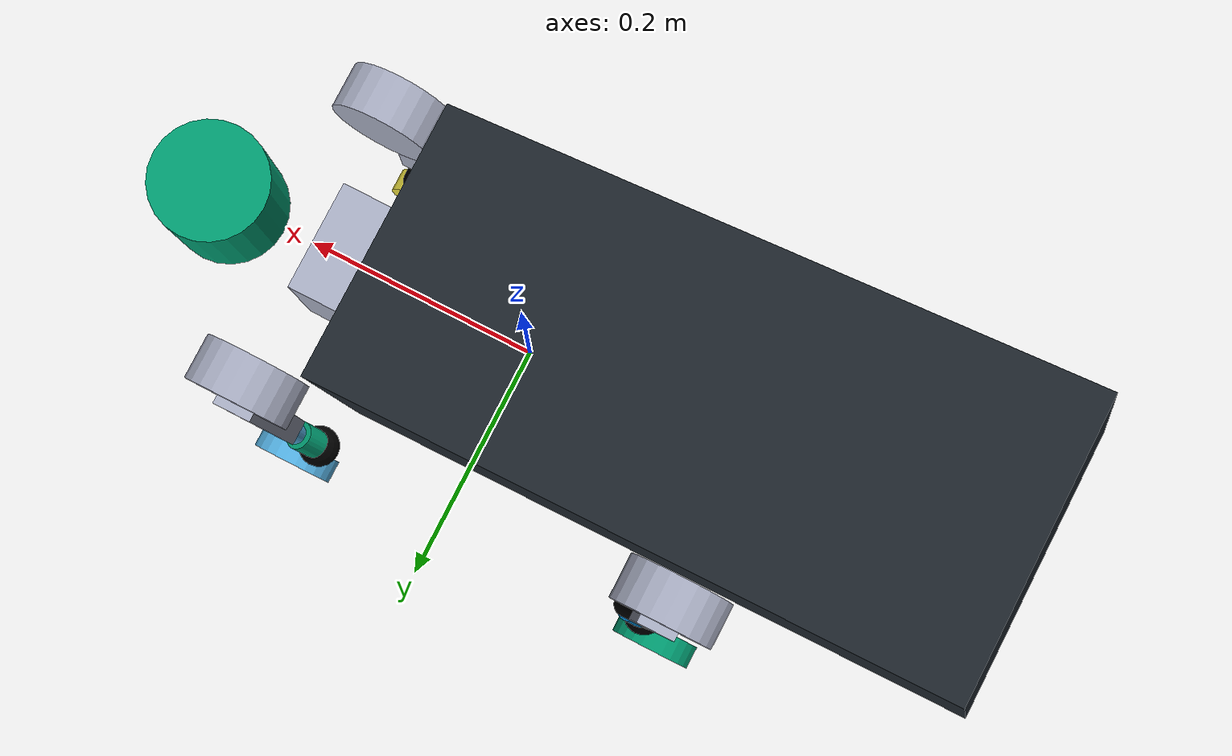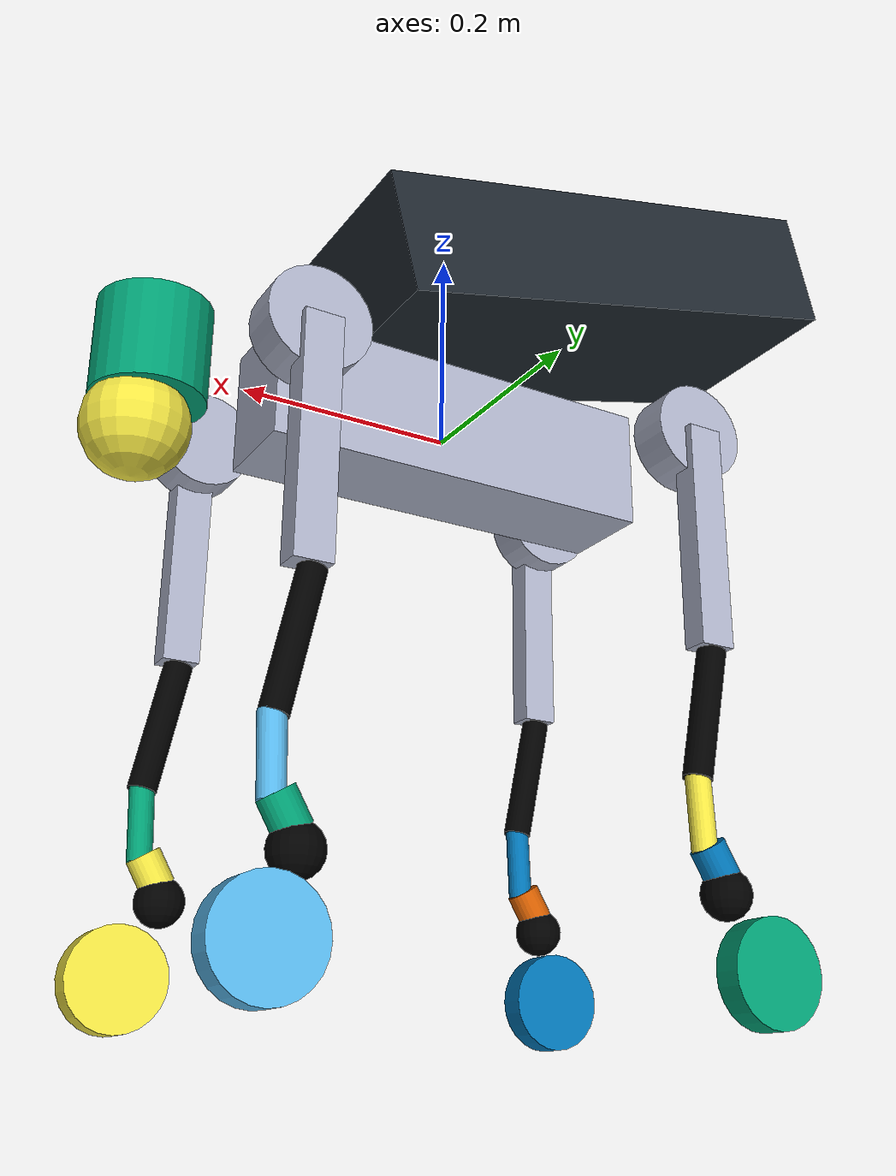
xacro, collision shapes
<?xml version='1.0' encoding='utf-8'?>
<robot name="go2_caddie" xmlns:xacro="http://www.ros.org/wiki/xacro">
  <xacro:arg name="use_gazebo" default="true"/>
  <xacro:arg name="leg_joint_type" default="fixed"/>
  <xacro:arg name="use_leg_control" default="false"/>
  <xacro:arg name="use_leg_collision" default="true"/>
  <xacro:arg name="leg_mass_scale" default="1.0"/>
  <xacro:property name="leg_mass_scale_value" value="$(arg leg_mass_scale)"/>

  <xacro:macro name="leg_position_joint" params="joint_name lower upper initial">
    <joint name="${joint_name}">
      <command_interface name="position">
        <param name="min">${lower}</param>
        <param name="max">${upper}</param>
      </command_interface>
      <state_interface name="position">
        <param name="initial_value">${initial}</param>
      </state_interface>
      <state_interface name="velocity"/>
      <state_interface name="effort"/>
    </joint>
  </xacro:macro>

  <xacro:macro name="visual_only_leg_link" params="link_name">
    <gazebo reference="${link_name}">
      <gravity>false</gravity>
      <self_collide>false</self_collide>
    </gazebo>
  </xacro:macro>

  <link name="base_footprint"/>
  <joint name="base_footprint_to_base" type="fixed">
    <origin xyz="0 0 0" rpy="0 0 0"/>
    <parent link="base_footprint"/>
    <child link="base"/>
  </joint>

  <link name="base">
    <inertial>
      <origin xyz="0.021112 0 -0.005366" rpy="0 0 0" />
      <mass value="6.921" />
      <inertia ixx="0.02448" ixy="0.00012166" ixz="0.0014849" iyy="0.098077" iyz="-3.12E-05" izz="0.107" />
    </inertial>
    <visual>
      <origin xyz="0 0 0" rpy="0 0 0" />
      <geometry>
        <mesh filename="package://go2_description/dae/base.dae" />
      </geometry>
      <material name="深色橡胶_001-effect"><color rgba="0.6717055 0.6924257 0.7742702 1" /></material><material name="白色logo_001-effect"><color rgba="1 1 1 1" /></material><material name="黑色贴纸_007-effect"><color rgba="0.009018 0.009018 0.009018 1" /></material><material name="黑色金属_007-effect"><color rgba="0.01341 0.01341 0.01341 1" /></material><material name="黑色塑料_003-effect"><color rgba="0.023455 0.023455 0.023455 1" /></material></visual>
    <collision>
      <origin rpy="0 0 0" xyz="0 0 0" />
      <geometry>
        <box size="0.3762 0.0935 0.114" />
      </geometry>
    </collision>
  </link>
  <link name="Head_upper">
    <inertial>
      <origin xyz="0 0 0" rpy="0 0 0" />
      <mass value="0.001" />
      <inertia ixx="9.6e-06" ixy="0" ixz="0" iyy="9.6e-06" iyz="0" izz="9.6e-06" />
    </inertial>
    <collision>
      <origin xyz="0 0 0" rpy="0 0 0" />
      <geometry>
        <cylinder radius="0.05" length="0.09" />
      </geometry>
    </collision>
  </link>
  <joint name="Head_upper_joint" type="fixed" dont_collapse="true">
    <origin xyz="0.285 0 0.01" rpy="0 0 0" />
    <parent link="base" />
    <child link="Head_upper" />
    <axis xyz="0 0 0" />
  </joint>
  <link name="Head_lower">
    <inertial>
      <origin xyz="0 0 0" rpy="0 0 0" />
      <mass value="0.001" />
      <inertia ixx="9.6e-06" ixy="0" ixz="0" iyy="9.6e-06" iyz="0" izz="9.6e-06" />
    </inertial>
    <collision>
      <origin xyz="0 0 0" rpy="0 0 0" />
      <geometry>
        <sphere radius="0.047" />
      </geometry>
    </collision>
  </link>
  <joint name="Head_lower_joint" type="fixed" dont_collapse="true">
    <origin xyz="0.008 0 -0.07" rpy="0 0 0" />
    <parent link="Head_upper" />
    <child link="Head_lower" />
    <axis xyz="0 0 0" />
  </joint>
  <link name="FL_hip">
    <inertial>
      <origin xyz="-0.0054 0.00194 -0.000105" rpy="0 0 0" />
      <mass value="${0.678 * float(leg_mass_scale_value)}" />
      <inertia ixx="${0.00048 * float(leg_mass_scale_value)}" ixy="${-3.01E-06 * float(leg_mass_scale_value)}" ixz="${1.11E-06 * float(leg_mass_scale_value)}" iyy="${0.000884 * float(leg_mass_scale_value)}" iyz="${-1.42E-06 * float(leg_mass_scale_value)}" izz="${0.000596 * float(leg_mass_scale_value)}" />
    </inertial>
    <visual>
      <origin xyz="0 0 0" rpy="0 0 0" />
      <geometry>
        <mesh filename="package://go2_description/dae/hip.dae" />
      </geometry>
      <material name="深色橡胶_001-effect"><color rgba="0.6717055 0.6924257 0.7742702 1" /></material><material name="Material-effect"><color rgba="0.9 0.95 0.95 1" /></material></visual>
    <xacro:if value="$(arg use_leg_collision)">
    <collision>
      <origin rpy="1.5707963267948966 0 0" xyz="0 0.08 0" />
      <geometry>
        <cylinder length="0.04" radius="0.046" />
      </geometry>
    </collision>
    </xacro:if>
  </link>
  <joint name="FL_hip_joint" type="$(arg leg_joint_type)">
    <origin xyz="0.1934 0.0465 0" rpy="0 0 0" />
    <parent link="base" />
    <child link="FL_hip" />
    <axis xyz="1 0 0" />
    <limit lower="-1.0472" upper="1.0472" effort="70.0" velocity="30.1" />
  </joint>
  <link name="FL_hip_rotor">
    <inertial>
      <origin rpy="0 0 0" xyz="0.0 0.0 0.0" />
      <mass value="0.089" />
      <inertia ixx="0.000111842" ixy="0.0" ixz="0.0" iyy="0.000059647" iyz="0.0" izz="0.000059647" />
    </inertial>
  </link>
  <joint name="FL_hip_rotor_joint" type="fixed">
    <origin rpy="0 0 0" xyz="0.11215 0.04675 0" />
    <parent link="base" />
    <child link="FL_hip_rotor" />
  </joint>
  <link name="FL_thigh">
    <inertial>
      <origin xyz="-0.00374 -0.0223 -0.0327" rpy="0 0 0" />
      <mass value="${1.152 * float(leg_mass_scale_value)}" />
      <inertia ixx="${0.00584 * float(leg_mass_scale_value)}" ixy="${8.72E-05 * float(leg_mass_scale_value)}" ixz="${-0.000289 * float(leg_mass_scale_value)}" iyy="${0.0058 * float(leg_mass_scale_value)}" iyz="${0.000808 * float(leg_mass_scale_value)}" izz="${0.00103 * float(leg_mass_scale_value)}" />
    </inertial>
    <visual>
      <origin xyz="0 0 0" rpy="0 0 0" />
      <geometry>
        <mesh filename="package://go2_description/dae/thigh.dae" />
      </geometry>
      <material name="深色橡胶_003-effect"><color rgba="0.6717055 0.6924257 0.7742702 1" /></material><material name="Material_009-effect"><color rgba="0.9 0.95 0.95 1" /></material></visual>
    <xacro:if value="$(arg use_leg_collision)">
    <collision>
      <origin rpy="0 1.5707963267948966 0" xyz="0 0 -0.1065" />
      <geometry>
        <box size="0.213 0.0245 0.034" />
      </geometry>
    </collision>
    </xacro:if>
  </link>
  <joint name="FL_thigh_joint" type="$(arg leg_joint_type)">
    <origin xyz="0 0.0955 0" rpy="0 0 0" />
    <parent link="FL_hip" />
    <child link="FL_thigh" />
    <axis xyz="0 1 0" />
    <limit lower="-1.5708" upper="3.4907" effort="70.0" velocity="30.1" />
  </joint>
  <link name="FL_thigh_rotor">
    <inertial>
      <origin rpy="0 0 0" xyz="0.0 0.0 0.0" />
      <mass value="0.089" />
      <inertia ixx="0.000059647" ixy="0.0" ixz="0.0" iyy="0.000111842" iyz="0.0" izz="0.000059647" />
    </inertial>
  </link>
  <joint name="FL_thigh_rotor_joint" type="fixed">
    <origin rpy="0 0 0" xyz="0 -0.00015 0" />
    <parent link="FL_hip" />
    <child link="FL_thigh_rotor" />
  </joint>
  <link name="FL_calf">
    <inertial>
      <origin xyz="0.00548 -0.000975 -0.115" rpy="0 0 0" />
      <mass value="${0.154 * float(leg_mass_scale_value)}" />
      <inertia ixx="${0.00108 * float(leg_mass_scale_value)}" ixy="${3.4E-07 * float(leg_mass_scale_value)}" ixz="${1.72E-05 * float(leg_mass_scale_value)}" iyy="${0.0011 * float(leg_mass_scale_value)}" iyz="${8.28E-06 * float(leg_mass_scale_value)}" izz="${3.29E-05 * float(leg_mass_scale_value)}" />
    </inertial>
    <visual>
      <origin xyz="0 0 0" rpy="0 0 0" />
      <geometry>
        <mesh filename="package://go2_description/dae/calf.dae" />
      </geometry>
      <material name="黑色足端_005-effect"><color rgba="0 0 0 1" /></material><material name="深色橡胶_005-effect"><color rgba="0.6717055 0.6924257 0.7742702 1" /></material></visual>
    <xacro:if value="$(arg use_leg_collision)">
    <collision>
      <origin rpy="0 -0.21 0" xyz="0.008 0 -0.06" />
      <geometry>
        <cylinder length="0.12" radius="0.012" />
      </geometry>
    </collision>
    </xacro:if>
  </link>
  <joint name="FL_calf_joint" type="$(arg leg_joint_type)">
    <origin xyz="0 0 -0.213" rpy="0 0 0" />
    <parent link="FL_thigh" />
    <child link="FL_calf" />
    <axis xyz="0 1 0" />
    <limit lower="-2.7227" upper="-0.83776" effort="90.0" velocity="15.70" />
  </joint>
  <link name="FL_calflower">
    <xacro:if value="$(arg use_leg_collision)">
    <collision>
      <origin rpy="0 0 0" xyz="0 0 0" />
      <geometry>
        <cylinder length="0.065" radius="0.011" />
      </geometry>
    </collision>
    </xacro:if>
  </link>
  <joint name="FL_calflower_joint" type="fixed">
    <origin xyz="0.020 0 -0.148" rpy="0 0.05 0" />
    <parent link="FL_calf" />
    <child link="FL_calflower" />
    <axis xyz="0 0 0" />
  </joint>
  <link name="FL_calflower1">
    <xacro:if value="$(arg use_leg_collision)">
    <collision>
      <origin rpy="0 0 0" xyz="0 0 0" />
      <geometry>
        <cylinder length="0.03" radius="0.0155" />
      </geometry>
    </collision>
    </xacro:if>
  </link>
  <joint name="FL_calflower1_joint" type="fixed">
    <origin xyz="-0.01 0 -0.04" rpy="0 0.48 0" />
    <parent link="FL_calflower" />
    <child link="FL_calflower1" />
    <axis xyz="0 0 0" />
  </joint>
  <link name="FL_calf_rotor">
    <inertial>
      <origin rpy="0 0 0" xyz="0.0 0.0 0.0" />
      <mass value="0.089" />
      <inertia ixx="0.000059647" ixy="0.0" ixz="0.0" iyy="0.000111842" iyz="0.0" izz="0.000059647" />
    </inertial>
  </link>
  <joint name="FL_calf_rotor_joint" type="fixed">
    <origin rpy="0 0 0" xyz="0 -0.03235 0" />
    <parent link="FL_thigh" />
    <child link="FL_calf_rotor" />
  </joint>
  <link name="FL_foot">
    <inertial>
      <origin xyz="0 0 0" rpy="0 0 0" />
      <mass value="${0.04 * float(leg_mass_scale_value)}" />
      <inertia ixx="${9.6e-06 * float(leg_mass_scale_value)}" ixy="${0 * float(leg_mass_scale_value)}" ixz="${0 * float(leg_mass_scale_value)}" iyy="${9.6e-06 * float(leg_mass_scale_value)}" iyz="${0 * float(leg_mass_scale_value)}" izz="${9.6e-06 * float(leg_mass_scale_value)}" />
    </inertial>
    <visual>
      <origin xyz="0 0 0" rpy="0 0 0" />
      <geometry>
        <mesh filename="package://go2_description/dae/foot.dae" />
      </geometry>
      <material name="黑色足端_007-effect"><color rgba="0 0 0 1" /></material></visual>
    <xacro:if value="$(arg use_leg_collision)">
    <collision>
      <origin rpy="0 0 0" xyz="-0.002 0 0" />
      <geometry>
        <sphere radius="0.022" />
      </geometry>
    </collision>
    </xacro:if>
  </link>
  <joint name="FL_foot_joint" type="fixed" dont_collapse="true">
    <origin xyz="0 0 -0.213" rpy="0 0 0" />
    <parent link="FL_calf" />
    <child link="FL_foot" />
    <axis xyz="0 0 0" />
  </joint>
  <link name="FR_hip">
    <inertial>
      <origin xyz="-0.0054 -0.00194 -0.000105" rpy="0 0 0" />
      <mass value="${0.678 * float(leg_mass_scale_value)}" />
      <inertia ixx="${0.00048 * float(leg_mass_scale_value)}" ixy="${3.01E-06 * float(leg_mass_scale_value)}" ixz="${1.11E-06 * float(leg_mass_scale_value)}" iyy="${0.000884 * float(leg_mass_scale_value)}" iyz="${1.42E-06 * float(leg_mass_scale_value)}" izz="${0.000596 * float(leg_mass_scale_value)}" />
    </inertial>
    <visual>
      <origin xyz="0 0 0" rpy="3.1415 0 0" />
      <geometry>
        <mesh filename="package://go2_description/dae/hip.dae" />
      </geometry>
      <material name="深色橡胶_001-effect"><color rgba="0.6717055 0.6924257 0.7742702 1" /></material><material name="Material-effect"><color rgba="0.9 0.95 0.95 1" /></material></visual>
    <xacro:if value="$(arg use_leg_collision)">
    <collision>
      <origin rpy="1.5707963267948966 0 0" xyz="0 -0.08 0" />
      <geometry>
        <cylinder length="0.04" radius="0.046" />
      </geometry>
    </collision>
    </xacro:if>
  </link>
  <joint name="FR_hip_joint" type="$(arg leg_joint_type)">
    <origin xyz="0.1934 -0.0465 0" rpy="0 0 0" />
    <parent link="base" />
    <child link="FR_hip" />
    <axis xyz="1 0 0" />
    <limit lower="-1.0472" upper="1.0472" effort="70.0" velocity="30.1" />
  </joint>
  <link name="FR_hip_rotor">
    <inertial>
      <origin rpy="0 0 0" xyz="0.0 0.0 0.0" />
      <mass value="0.089" />
      <inertia ixx="0.000111842" ixy="0.0" ixz="0.0" iyy="0.000059647" iyz="0.0" izz="0.000059647" />
    </inertial>
  </link>
  <joint name="FR_hip_rotor_joint" type="fixed">
    <origin rpy="0 0 0" xyz="0.11215 -0.04675 0" />
    <parent link="base" />
    <child link="FR_hip_rotor" />
  </joint>
  <link name="FR_thigh">
    <inertial>
      <origin xyz="-0.00374 0.0223 -0.0327" rpy="0 0 0" />
      <mass value="${1.152 * float(leg_mass_scale_value)}" />
      <inertia ixx="${0.00584 * float(leg_mass_scale_value)}" ixy="${-8.72E-05 * float(leg_mass_scale_value)}" ixz="${-0.000289 * float(leg_mass_scale_value)}" iyy="${0.0058 * float(leg_mass_scale_value)}" iyz="${-0.000808 * float(leg_mass_scale_value)}" izz="${0.00103 * float(leg_mass_scale_value)}" />
    </inertial>
    <visual>
      <origin xyz="0 0 0" rpy="0 0 0" />
      <geometry>
        <mesh filename="package://go2_description/dae/thigh_mirror.dae" />
      </geometry>
      <material name="深色橡胶_012-effect"><color rgba="0.6717055 0.6924257 0.7742702 1" /></material><material name="Material_011-effect"><color rgba="0.9 0.95 0.95 1" /></material></visual>
    <xacro:if value="$(arg use_leg_collision)">
    <collision>
      <origin rpy="0 1.5707963267948966 0" xyz="0 0 -0.1065" />
      <geometry>
        <box size="0.213 0.0245 0.034" />
      </geometry>
    </collision>
    </xacro:if>
  </link>
  <joint name="FR_thigh_joint" type="$(arg leg_joint_type)">
    <origin xyz="0 -0.0955 0" rpy="0 0 0" />
    <parent link="FR_hip" />
    <child link="FR_thigh" />
    <axis xyz="0 1 0" />
    <limit lower="-1.5708" upper="3.4907" effort="70.0" velocity="30.1" />
  </joint>
  <link name="FR_thigh_rotor">
    <inertial>
      <origin rpy="0 0 0" xyz="0.0 0.0 0.0" />
      <mass value="0.089" />
      <inertia ixx="0.000059647" ixy="0.0" ixz="0.0" iyy="0.000111842" iyz="0.0" izz="0.000059647" />
    </inertial>
  </link>
  <joint name="FR_thigh_rotor_joint" type="fixed">
    <origin rpy="0 0 0" xyz="0 0.00015 0" />
    <parent link="FR_hip" />
    <child link="FR_thigh_rotor" />
  </joint>
  <link name="FR_calf">
    <inertial>
      <origin xyz="0.00548 0.000975 -0.115" rpy="0 0 0" />
      <mass value="${0.154 * float(leg_mass_scale_value)}" />
      <inertia ixx="${0.00108 * float(leg_mass_scale_value)}" ixy="${-3.4E-07 * float(leg_mass_scale_value)}" ixz="${1.72E-05 * float(leg_mass_scale_value)}" iyy="${0.0011 * float(leg_mass_scale_value)}" iyz="${-8.28E-06 * float(leg_mass_scale_value)}" izz="${3.29E-05 * float(leg_mass_scale_value)}" />
    </inertial>
    <visual>
      <origin xyz="0 0 0" rpy="0 0 0" />
      <geometry>
        <mesh filename="package://go2_description/dae/calf_mirror.dae" />
      </geometry>
      <material name="黑色足端_006-effect"><color rgba="0 0 0 1" /></material><material name="深色橡胶_007-effect"><color rgba="0.6717055 0.6924257 0.7742702 1" /></material></visual>
    <xacro:if value="$(arg use_leg_collision)">
    <collision>
      <origin rpy="0 -0.2 0" xyz="0.01 0 -0.06" />
      <geometry>
        <cylinder length="0.12" radius="0.013" />
      </geometry>
    </collision>
    </xacro:if>
  </link>
  <joint name="FR_calf_joint" type="$(arg leg_joint_type)">
    <origin xyz="0 0 -0.213" rpy="0 0 0" />
    <parent link="FR_thigh" />
    <child link="FR_calf" />
    <axis xyz="0 1 0" />
    <limit lower="-2.7227" upper="-0.83776" effort="90.0" velocity="15.70" />
  </joint>
  <link name="FR_calflower">
    <xacro:if value="$(arg use_leg_collision)">
    <collision>
      <origin rpy="0 0 0" xyz="0 0 0" />
      <geometry>
        <cylinder length="0.065" radius="0.011" />
      </geometry>
    </collision>
    </xacro:if>
  </link>
  <joint name="FR_calflower_joint" type="fixed">
    <origin xyz="0.020 0 -0.148" rpy="0 0.05 0" />
    <parent link="FR_calf" />
    <child link="FR_calflower" />
    <axis xyz="0 0 0" />
  </joint>
  <link name="FR_calflower1">
    <xacro:if value="$(arg use_leg_collision)">
    <collision>
      <origin rpy="0 0 0" xyz="0 0 0" />
      <geometry>
        <cylinder length="0.03" radius="0.0155" />
      </geometry>
    </collision>
    </xacro:if>
  </link>
  <joint name="FR_calflower1_joint" type="fixed">
    <origin xyz="-0.01 0 -0.04" rpy="0 0.48 0" />
    <parent link="FR_calflower" />
    <child link="FR_calflower1" />
    <axis xyz="0 0 0" />
  </joint>
  <link name="FR_calf_rotor">
    <inertial>
      <origin rpy="0 0 0" xyz="0.0 0.0 0.0" />
      <mass value="0.089" />
      <inertia ixx="0.000059647" ixy="0.0" ixz="0.0" iyy="0.000111842" iyz="0.0" izz="0.000059647" />
    </inertial>
  </link>
  <joint name="FR_calf_rotor_joint" type="fixed">
    <origin rpy="0 0 0" xyz="0 0.03235 0" />
    <parent link="FR_thigh" />
    <child link="FR_calf_rotor" />
  </joint>
  <link name="FR_foot">
    <inertial>
      <origin xyz="0 0 0" rpy="0 0 0" />
      <mass value="${0.04 * float(leg_mass_scale_value)}" />
      <inertia ixx="${9.6e-06 * float(leg_mass_scale_value)}" ixy="${0 * float(leg_mass_scale_value)}" ixz="${0 * float(leg_mass_scale_value)}" iyy="${9.6e-06 * float(leg_mass_scale_value)}" iyz="${0 * float(leg_mass_scale_value)}" izz="${9.6e-06 * float(leg_mass_scale_value)}" />
    </inertial>
    <visual>
      <origin xyz="0 0 0" rpy="0 0 0" />
      <geometry>
        <mesh filename="package://go2_description/dae/foot.dae" />
      </geometry>
      <material name="黑色足端_007-effect"><color rgba="0 0 0 1" /></material></visual>
    <xacro:if value="$(arg use_leg_collision)">
    <collision>
      <origin rpy="0 0 0" xyz="-0.002 0 0" />
      <geometry>
        <sphere radius="0.022" />
      </geometry>
    </collision>
    </xacro:if>
  </link>
  <joint name="FR_foot_joint" type="fixed" dont_collapse="true">
    <origin xyz="0 0 -0.213" rpy="0 0 0" />
    <parent link="FR_calf" />
    <child link="FR_foot" />
    <axis xyz="0 0 0" />
  </joint>
  <link name="RL_hip">
    <inertial>
      <origin xyz="0.0054 0.00194 -0.000105" rpy="0 0 0" />
      <mass value="${0.678 * float(leg_mass_scale_value)}" />
      <inertia ixx="${0.00048 * float(leg_mass_scale_value)}" ixy="${3.01E-06 * float(leg_mass_scale_value)}" ixz="${-1.11E-06 * float(leg_mass_scale_value)}" iyy="${0.000884 * float(leg_mass_scale_value)}" iyz="${-1.42E-06 * float(leg_mass_scale_value)}" izz="${0.000596 * float(leg_mass_scale_value)}" />
    </inertial>
    <visual>
      <origin xyz="0 0 0" rpy="0 3.1415 0" />
      <geometry>
        <mesh filename="package://go2_description/dae/hip.dae" />
      </geometry>
      <material name="深色橡胶_001-effect"><color rgba="0.6717055 0.6924257 0.7742702 1" /></material><material name="Material-effect"><color rgba="0.9 0.95 0.95 1" /></material></visual>
    <xacro:if value="$(arg use_leg_collision)">
    <collision>
      <origin rpy="1.5707963267948966 0 0" xyz="0 0.08 0" />
      <geometry>
        <cylinder length="0.04" radius="0.046" />
      </geometry>
    </collision>
    </xacro:if>
  </link>
  <joint name="RL_hip_joint" type="$(arg leg_joint_type)">
    <origin xyz="-0.1934 0.0465 0" rpy="0 0 0" />
    <parent link="base" />
    <child link="RL_hip" />
    <axis xyz="1 0 0" />
    <limit lower="-1.0472" upper="1.0472" effort="70.0" velocity="30.1" />
  </joint>
  <link name="RL_hip_rotor">
    <inertial>
      <origin rpy="0 0 0" xyz="0.0 0.0 0.0" />
      <mass value="0.089" />
      <inertia ixx="0.000111842" ixy="0.0" ixz="0.0" iyy="0.000059647" iyz="0.0" izz="0.000059647" />
    </inertial>
  </link>
  <joint name="RL_hip_rotor_joint" type="fixed">
    <origin rpy="0 0 0" xyz="-0.11215 0.04675 0" />
    <parent link="base" />
    <child link="RL_hip_rotor" />
  </joint>
  <link name="RL_thigh">
    <inertial>
      <origin xyz="-0.00374 -0.0223 -0.0327" rpy="0 0 0" />
      <mass value="${1.152 * float(leg_mass_scale_value)}" />
      <inertia ixx="${0.00584 * float(leg_mass_scale_value)}" ixy="${8.72E-05 * float(leg_mass_scale_value)}" ixz="${-0.000289 * float(leg_mass_scale_value)}" iyy="${0.0058 * float(leg_mass_scale_value)}" iyz="${0.000808 * float(leg_mass_scale_value)}" izz="${0.00103 * float(leg_mass_scale_value)}" />
    </inertial>
    <visual>
      <origin xyz="0 0 0" rpy="0 0 0" />
      <geometry>
        <mesh filename="package://go2_description/dae/thigh.dae" />
      </geometry>
      <material name="深色橡胶_003-effect"><color rgba="0.6717055 0.6924257 0.7742702 1" /></material><material name="Material_009-effect"><color rgba="0.9 0.95 0.95 1" /></material></visual>
    <xacro:if value="$(arg use_leg_collision)">
    <collision>
      <origin rpy="0 1.5707963267948966 0" xyz="0 0 -0.1065" />
      <geometry>
        <box size="0.213 0.0245 0.034" />
      </geometry>
    </collision>
    </xacro:if>
  </link>
  <joint name="RL_thigh_joint" type="$(arg leg_joint_type)">
    <origin xyz="0 0.0955 0" rpy="0 0 0" />
    <parent link="RL_hip" />
    <child link="RL_thigh" />
    <axis xyz="0 1 0" />
    <limit lower="-0.5236" upper="4.5379" effort="70.0" velocity="30.1" />
  </joint>
  <link name="RL_thigh_rotor">
    <inertial>
      <origin rpy="0 0 0" xyz="0.0 0.0 0.0" />
      <mass value="0.089" />
      <inertia ixx="0.000059647" ixy="0.0" ixz="0.0" iyy="0.000111842" iyz="0.0" izz="0.000059647" />
    </inertial>
  </link>
  <joint name="RL_thigh_rotor_joint" type="fixed">
    <origin rpy="0 0 0" xyz="0 -0.00015 0" />
    <parent link="RL_hip" />
    <child link="RL_thigh_rotor" />
  </joint>
  <link name="RL_calf">
    <inertial>
      <origin xyz="0.00548 -0.000975 -0.115" rpy="0 0 0" />
      <mass value="${0.154 * float(leg_mass_scale_value)}" />
      <inertia ixx="${0.00108 * float(leg_mass_scale_value)}" ixy="${3.4E-07 * float(leg_mass_scale_value)}" ixz="${1.72E-05 * float(leg_mass_scale_value)}" iyy="${0.0011 * float(leg_mass_scale_value)}" iyz="${8.28E-06 * float(leg_mass_scale_value)}" izz="${3.29E-05 * float(leg_mass_scale_value)}" />
    </inertial>
    <visual>
      <origin xyz="0 0 0" rpy="0 0 0" />
      <geometry>
        <mesh filename="package://go2_description/dae/calf.dae" />
      </geometry>
      <material name="黑色足端_005-effect"><color rgba="0 0 0 1" /></material><material name="深色橡胶_005-effect"><color rgba="0.6717055 0.6924257 0.7742702 1" /></material></visual>
    <xacro:if value="$(arg use_leg_collision)">
    <collision>
      <origin rpy="0 -0.2 0" xyz="0.01 0 -0.06" />
      <geometry>
        <cylinder length="0.12" radius="0.013" />
      </geometry>
    </collision>
    </xacro:if>
  </link>
  <joint name="RL_calf_joint" type="$(arg leg_joint_type)">
    <origin xyz="0 0 -0.213" rpy="0 0 0" />
    <parent link="RL_thigh" />
    <child link="RL_calf" />
    <axis xyz="0 1 0" />
    <limit lower="-2.7227" upper="-0.83776" effort="90.0" velocity="15.70" />
  </joint>
  <link name="RL_calflower">
    <xacro:if value="$(arg use_leg_collision)">
    <collision>
      <origin rpy="0 0 0" xyz="0 0 0" />
      <geometry>
        <cylinder length="0.065" radius="0.011" />
      </geometry>
    </collision>
    </xacro:if>
  </link>
  <joint name="RL_calflower_joint" type="fixed">
    <origin xyz="0.020 0 -0.148" rpy="0 0.05 0" />
    <parent link="RL_calf" />
    <child link="RL_calflower" />
    <axis xyz="0 0 0" />
  </joint>
  <link name="RL_calflower1">
    <xacro:if value="$(arg use_leg_collision)">
    <collision>
      <origin rpy="0 0 0" xyz="0 0 0" />
      <geometry>
        <cylinder length="0.03" radius="0.0155" />
      </geometry>
    </collision>
    </xacro:if>
  </link>
  <joint name="RL_calflower1_joint" type="fixed">
    <origin xyz="-0.01 0 -0.04" rpy="0 0.48 0" />
    <parent link="RL_calflower" />
    <child link="RL_calflower1" />
    <axis xyz="0 0 0" />
  </joint>
  <link name="RL_calf_rotor">
    <inertial>
      <origin rpy="0 0 0" xyz="0.0 0.0 0.0" />
      <mass value="0.089" />
      <inertia ixx="0.000059647" ixy="0.0" ixz="0.0" iyy="0.000111842" iyz="0.0" izz="0.000059647" />
    </inertial>
  </link>
  <joint name="RL_calf_rotor_joint" type="fixed">
    <origin rpy="0 0 0" xyz="0 -0.03235 0" />
    <parent link="RL_thigh" />
    <child link="RL_calf_rotor" />
  </joint>
  <link name="RL_foot">
    <inertial>
      <origin xyz="0 0 0" rpy="0 0 0" />
      <mass value="${0.04 * float(leg_mass_scale_value)}" />
      <inertia ixx="${9.6e-06 * float(leg_mass_scale_value)}" ixy="${0 * float(leg_mass_scale_value)}" ixz="${0 * float(leg_mass_scale_value)}" iyy="${9.6e-06 * float(leg_mass_scale_value)}" iyz="${0 * float(leg_mass_scale_value)}" izz="${9.6e-06 * float(leg_mass_scale_value)}" />
    </inertial>
    <visual>
      <origin xyz="0 0 0" rpy="0 0 0" />
      <geometry>
        <mesh filename="package://go2_description/dae/foot.dae" />
      </geometry>
      <material name="黑色足端_007-effect"><color rgba="0 0 0 1" /></material></visual>
    <xacro:if value="$(arg use_leg_collision)">
    <collision>
      <origin rpy="0 0 0" xyz="-0.002 0 0" />
      <geometry>
        <sphere radius="0.022" />
      </geometry>
    </collision>
    </xacro:if>
  </link>
  <joint name="RL_foot_joint" type="fixed" dont_collapse="true">
    <origin xyz="0 0 -0.213" rpy="0 0 0" />
    <parent link="RL_calf" />
    <child link="RL_foot" />
    <axis xyz="0 0 0" />
  </joint>
  <link name="RR_hip">
    <inertial>
      <origin xyz="0.0054 -0.00194 -0.000105" rpy="0 0 0" />
      <mass value="${0.678 * float(leg_mass_scale_value)}" />
      <inertia ixx="${0.00048 * float(leg_mass_scale_value)}" ixy="${-3.01E-06 * float(leg_mass_scale_value)}" ixz="${-1.11E-06 * float(leg_mass_scale_value)}" iyy="${0.000884 * float(leg_mass_scale_value)}" iyz="${1.42E-06 * float(leg_mass_scale_value)}" izz="${0.000596 * float(leg_mass_scale_value)}" />
    </inertial>
    <visual>
      <origin xyz="0 0 0" rpy="3.1415 3.1415 0" />
      <geometry>
        <mesh filename="package://go2_description/dae/hip.dae" />
      </geometry>
      <material name="深色橡胶_001-effect"><color rgba="0.6717055 0.6924257 0.7742702 1" /></material><material name="Material-effect"><color rgba="0.9 0.95 0.95 1" /></material></visual>
    <xacro:if value="$(arg use_leg_collision)">
    <collision>
      <origin rpy="1.5707963267948966 0 0" xyz="0 -0.08 0" />
      <geometry>
        <cylinder length="0.04" radius="0.046" />
      </geometry>
    </collision>
    </xacro:if>
  </link>
  <joint name="RR_hip_joint" type="$(arg leg_joint_type)">
    <origin xyz="-0.1934 -0.0465 0" rpy="0 0 0" />
    <parent link="base" />
    <child link="RR_hip" />
    <axis xyz="1 0 0" />
    <limit lower="-1.0472" upper="1.0472" effort="70.0" velocity="30.1" />
  </joint>
  <link name="RR_hip_rotor">
    <inertial>
      <origin rpy="0 0 0" xyz="0.0 0.0 0.0" />
      <mass value="0.089" />
      <inertia ixx="0.000111842" ixy="0.0" ixz="0.0" iyy="0.000059647" iyz="0.0" izz="0.000059647" />
    </inertial>
  </link>
  <joint name="RR_hip_rotor_joint" type="fixed">
    <origin rpy="0 0 0" xyz="-0.11215 -0.04675 0" />
    <parent link="base" />
    <child link="RR_hip_rotor" />
  </joint>
  <link name="RR_thigh">
    <inertial>
      <origin xyz="-0.00374 0.0223 -0.0327" rpy="0 0 0" />
      <mass value="${1.152 * float(leg_mass_scale_value)}" />
      <inertia ixx="${0.00584 * float(leg_mass_scale_value)}" ixy="${-8.72E-05 * float(leg_mass_scale_value)}" ixz="${-0.000289 * float(leg_mass_scale_value)}" iyy="${0.0058 * float(leg_mass_scale_value)}" iyz="${-0.000808 * float(leg_mass_scale_value)}" izz="${0.00103 * float(leg_mass_scale_value)}" />
    </inertial>
    <visual>
      <origin xyz="0 0 0" rpy="0 0 0" />
      <geometry>
        <mesh filename="package://go2_description/dae/thigh_mirror.dae" />
      </geometry>
      <material name="深色橡胶_012-effect"><color rgba="0.6717055 0.6924257 0.7742702 1" /></material><material name="Material_011-effect"><color rgba="0.9 0.95 0.95 1" /></material></visual>
    <xacro:if value="$(arg use_leg_collision)">
    <collision>
      <origin rpy="0 1.5707963267948966 0" xyz="0 0 -0.1065" />
      <geometry>
        <box size="0.213 0.0245 0.034" />
      </geometry>
    </collision>
    </xacro:if>
  </link>
  <joint name="RR_thigh_joint" type="$(arg leg_joint_type)">
    <origin xyz="0 -0.0955 0" rpy="0 0 0" />
    <parent link="RR_hip" />
    <child link="RR_thigh" />
    <axis xyz="0 1 0" />
    <limit lower="-0.5236" upper="4.5379" effort="70.0" velocity="30.1" />
  </joint>
  <link name="RR_thigh_rotor">
    <inertial>
      <origin rpy="0 0 0" xyz="0.0 0.0 0.0" />
      <mass value="0.089" />
      <inertia ixx="0.000059647" ixy="0.0" ixz="0.0" iyy="0.000111842" iyz="0.0" izz="0.000059647" />
    </inertial>
  </link>
  <joint name="RR_thigh_rotor_joint" type="fixed">
    <origin rpy="0 0 0" xyz="0 0.00015 0" />
    <parent link="RR_hip" />
    <child link="RR_thigh_rotor" />
  </joint>
  <link name="RR_calf">
    <inertial>
      <origin xyz="0.00548 0.000975 -0.115" rpy="0 0 0" />
      <mass value="${0.154 * float(leg_mass_scale_value)}" />
      <inertia ixx="${0.00108 * float(leg_mass_scale_value)}" ixy="${-3.4E-07 * float(leg_mass_scale_value)}" ixz="${1.72E-05 * float(leg_mass_scale_value)}" iyy="${0.0011 * float(leg_mass_scale_value)}" iyz="${-8.28E-06 * float(leg_mass_scale_value)}" izz="${3.29E-05 * float(leg_mass_scale_value)}" />
    </inertial>
    <visual>
      <origin xyz="0 0 0" rpy="0 0 0" />
      <geometry>
        <mesh filename="package://go2_description/dae/calf_mirror.dae" />
      </geometry>
      <material name="黑色足端_006-effect"><color rgba="0 0 0 1" /></material><material name="深色橡胶_007-effect"><color rgba="0.6717055 0.6924257 0.7742702 1" /></material></visual>
    <xacro:if value="$(arg use_leg_collision)">
    <collision>
      <origin rpy="0 -0.2 0" xyz="0.01 0 -0.06" />
      <geometry>
        <cylinder length="0.12" radius="0.013" />
      </geometry>
    </collision>
    </xacro:if>
  </link>
  <joint name="RR_calf_joint" type="$(arg leg_joint_type)">
    <origin xyz="0 0 -0.213" rpy="0 0 0" />
    <parent link="RR_thigh" />
    <child link="RR_calf" />
    <axis xyz="0 1 0" />
    <limit lower="-2.7227" upper="-0.83776" effort="90.0" velocity="15.70" />
  </joint>
  <link name="RR_calflower">
    <xacro:if value="$(arg use_leg_collision)">
    <collision>
      <origin rpy="0 0 0" xyz="0 0 0" />
      <geometry>
        <cylinder length="0.065" radius="0.011" />
      </geometry>
    </collision>
    </xacro:if>
  </link>
  <joint name="RR_calflower_joint" type="fixed">
    <origin xyz="0.020 0 -0.148" rpy="0 0.05 0" />
    <parent link="RR_calf" />
    <child link="RR_calflower" />
    <axis xyz="0 0 0" />
  </joint>
  <link name="RR_calflower1">
    <xacro:if value="$(arg use_leg_collision)">
    <collision>
      <origin rpy="0 0 0" xyz="0 0 0" />
      <geometry>
        <cylinder length="0.03" radius="0.0155" />
      </geometry>
    </collision>
    </xacro:if>
  </link>
  <joint name="RR_calflower1_joint" type="fixed">
    <origin xyz="-0.01 0 -0.04" rpy="0 0.48 0" />
    <parent link="RR_calflower" />
    <child link="RR_calflower1" />
    <axis xyz="0 0 0" />
  </joint>
  <link name="RR_calf_rotor">
    <inertial>
      <origin rpy="0 0 0" xyz="0.0 0.0 0.0" />
      <mass value="0.089" />
      <inertia ixx="0.000059647" ixy="0.0" ixz="0.0" iyy="0.000111842" iyz="0.0" izz="0.000059647" />
    </inertial>
  </link>
  <joint name="RR_calf_rotor_joint" type="fixed">
    <origin rpy="0 0 0" xyz="0 0.03235 0" />
    <parent link="RR_thigh" />
    <child link="RR_calf_rotor" />
  </joint>
  <link name="RR_foot">
    <inertial>
      <origin xyz="0 0 0" rpy="0 0 0" />
      <mass value="${0.04 * float(leg_mass_scale_value)}" />
      <inertia ixx="${9.6e-06 * float(leg_mass_scale_value)}" ixy="${0 * float(leg_mass_scale_value)}" ixz="${0 * float(leg_mass_scale_value)}" iyy="${9.6e-06 * float(leg_mass_scale_value)}" iyz="${0 * float(leg_mass_scale_value)}" izz="${9.6e-06 * float(leg_mass_scale_value)}" />
    </inertial>
    <visual>
      <origin xyz="0 0 0" rpy="0 0 0" />
      <geometry>
        <mesh filename="package://go2_description/dae/foot.dae" />
      </geometry>
      <material name="黑色足端_007-effect"><color rgba="0 0 0 1" /></material></visual>
    <xacro:if value="$(arg use_leg_collision)">
    <collision>
      <origin rpy="0 0 0" xyz="-0.002 0 0" />
      <geometry>
        <sphere radius="0.022" />
      </geometry>
    </collision>
    </xacro:if>
  </link>
  <joint name="RR_foot_joint" type="fixed" dont_collapse="true">
    <origin xyz="0 0 -0.213" rpy="0 0 0" />
    <parent link="RR_calf" />
    <child link="RR_foot" />
    <axis xyz="0 0 0" />
  </joint>
  <link name="imu">
    <inertial>
      <origin xyz="0 0 0" rpy="0 0 0" />
      <mass value="0" />
      <inertia ixx="0" ixy="0" ixz="0" iyy="0" iyz="0" izz="0" />
    </inertial>
  </link>
  <joint name="imu_joint" type="fixed">
    <origin xyz="-0.02557 0 0.04232" rpy="0 0 0" />
    <parent link="base" />
    <child link="imu" />
    <axis xyz="0 0 0" />
  </joint>
  <link name="radar">
    <inertial>
      <origin xyz="0 0 0" rpy="0 0 0" />
      <mass value="0" />
      <inertia ixx="0" ixy="0" ixz="0" iyy="0" iyz="0" izz="0" />
    </inertial>
  </link>
  <joint name="radar_joint" type="fixed">
    <origin xyz="0.28945 0 -0.046825" rpy="0 2.8782 0" />
    <parent link="base" />
    <child link="radar" />
    <axis xyz="0 0 0" />
  </joint>
  <joint name="front_camera_joint" type="fixed">
    <origin rpy="0 0 0" xyz="0.32715 -0.00003 0.04297" />
      <parent link="base" />
      <child link="front_camera" />
  </joint>
  <link name="front_camera">
  </link>

  <xacro:if value="$(arg use_leg_control)">
    <ros2_control name="go2_caddie_leg_control" type="system">
      <hardware>
        <plugin>gz_ros2_control/GazeboSimSystem</plugin>
      </hardware>

      <xacro:leg_position_joint joint_name="FL_hip_joint" lower="-0.85" upper="0.85" initial="0.0"/>
      <xacro:leg_position_joint joint_name="FL_thigh_joint" lower="-0.8" upper="2.0" initial="0.78"/>
      <xacro:leg_position_joint joint_name="FL_calf_joint" lower="-2.55" upper="-0.9" initial="-1.55"/>

      <xacro:leg_position_joint joint_name="FR_hip_joint" lower="-0.85" upper="0.85" initial="0.0"/>
      <xacro:leg_position_joint joint_name="FR_thigh_joint" lower="-0.8" upper="2.0" initial="0.78"/>
      <xacro:leg_position_joint joint_name="FR_calf_joint" lower="-2.55" upper="-0.9" initial="-1.55"/>

      <xacro:leg_position_joint joint_name="RL_hip_joint" lower="-0.85" upper="0.85" initial="0.0"/>
      <xacro:leg_position_joint joint_name="RL_thigh_joint" lower="-0.8" upper="2.0" initial="0.78"/>
      <xacro:leg_position_joint joint_name="RL_calf_joint" lower="-2.55" upper="-0.9" initial="-1.55"/>

      <xacro:leg_position_joint joint_name="RR_hip_joint" lower="-0.85" upper="0.85" initial="0.0"/>
      <xacro:leg_position_joint joint_name="RR_thigh_joint" lower="-0.8" upper="2.0" initial="0.78"/>
      <xacro:leg_position_joint joint_name="RR_calf_joint" lower="-2.55" upper="-0.9" initial="-1.55"/>
    </ros2_control>
  </xacro:if>

  <link name="bag_rack_link">
    <inertial>
      <origin xyz="0 0 0"/>
      <mass value="2.0"/>
      <inertia ixx="0.012" ixy="0" ixz="0" iyy="0.045" iyz="0" izz="0.040"/>
    </inertial>
    <visual>
      <origin xyz="-0.08 0 0.02" rpy="0 0.25 0"/>
      <geometry>
        <box size="0.50 0.22 0.12"/>
      </geometry>
      <material name="caddie_bag_black">
        <color rgba="0.12 0.15 0.18 1.0"/>
      </material>
    </visual>
    <collision>
      <origin xyz="-0.08 0 0.02" rpy="0 0.25 0"/>
      <geometry>
        <box size="0.50 0.22 0.12"/>
      </geometry>
    </collision>
  </link>
  <joint name="base_to_bag_rack" type="fixed">
    <origin xyz="-0.06 0 0.18" rpy="0 0 0"/>
    <parent link="base"/>
    <child link="bag_rack_link"/>
  </joint>

  <link name="lidar_link">
    <inertial>
      <origin xyz="0 0 0"/>
      <mass value="0.2"/>
      <inertia ixx="0.0001" ixy="0" ixz="0" iyy="0.0001" iyz="0" izz="0.0001"/>
    </inertial>
    <visual>
      <origin xyz="0 0 0"/>
      <geometry>
        <cylinder radius="0.045" length="0.045"/>
      </geometry>
      <material name="caddie_sensor_glass">
        <color rgba="0.02 0.06 0.09 0.92"/>
      </material>
    </visual>
  </link>
  <joint name="base_to_lidar" type="fixed">
    <origin xyz="0.30 0 0.08" rpy="0 0 0"/>
    <parent link="base"/>
    <child link="lidar_link"/>
  </joint>

  <link name="camera_link">
    <inertial>
      <origin xyz="0 0 0"/>
      <mass value="0.25"/>
      <inertia ixx="0.0005" ixy="0" ixz="0" iyy="0.0005" iyz="0" izz="0.0005"/>
    </inertial>
    <visual>
      <origin xyz="0 0 0"/>
      <geometry>
        <box size="0.08 0.14 0.06"/>
      </geometry>
      <material name="caddie_camera_black">
        <color rgba="0.02 0.06 0.09 1.0"/>
      </material>
    </visual>
  </link>
  <joint name="base_to_camera_link" type="fixed">
    <origin xyz="0.345 0 0.03" rpy="0 0 0"/>
    <parent link="base"/>
    <child link="camera_link"/>
  </joint>

  <link name="camera_rgb_optical_frame"/>
  <joint name="camera_to_rgb_optical" type="fixed">
    <origin xyz="0.045 0 0" rpy="-1.57079632679 0 -1.57079632679"/>
    <parent link="camera_link"/>
    <child link="camera_rgb_optical_frame"/>
  </joint>

  <link name="camera_depth_optical_frame"/>
  <joint name="camera_to_depth_optical" type="fixed">
    <origin xyz="0.045 0 0" rpy="-1.57079632679 0 -1.57079632679"/>
    <parent link="camera_link"/>
    <child link="camera_depth_optical_frame"/>
  </joint>

  <link name="imu_link">
    <inertial>
      <origin xyz="0 0 0"/>
      <mass value="0.01"/>
      <inertia ixx="0.00001" ixy="0" ixz="0" iyy="0.00001" iyz="0" izz="0.00001"/>
    </inertial>
  </link>
  <joint name="base_to_imu_link" type="fixed">
    <origin xyz="-0.02557 0 0.04232" rpy="0 0 0"/>
    <parent link="base"/>
    <child link="imu_link"/>
  </joint>

  <link name="left_front_wheel_link">
    <inertial><mass value="0.04"/><inertia ixx="0.00001" ixy="0" ixz="0" iyy="0.00001" iyz="0" izz="0.00001"/></inertial>
    <collision><origin rpy="1.57079632679 0 0"/><geometry><cylinder radius="0.045" length="0.025"/></geometry></collision>
  </link>
  <joint name="left_front_wheel_joint" type="continuous">
    <origin xyz="0.22 0.16 -0.49" rpy="0 0 0"/>
    <parent link="base"/>
    <child link="left_front_wheel_link"/>
    <axis xyz="0 1 0"/>
  </joint>

  <link name="left_rear_wheel_link">
    <inertial><mass value="0.04"/><inertia ixx="0.00001" ixy="0" ixz="0" iyy="0.00001" iyz="0" izz="0.00001"/></inertial>
    <collision><origin rpy="1.57079632679 0 0"/><geometry><cylinder radius="0.045" length="0.025"/></geometry></collision>
  </link>
  <joint name="left_rear_wheel_joint" type="continuous">
    <origin xyz="-0.22 0.16 -0.49" rpy="0 0 0"/>
    <parent link="base"/>
    <child link="left_rear_wheel_link"/>
    <axis xyz="0 1 0"/>
  </joint>

  <link name="right_front_wheel_link">
    <inertial><mass value="0.04"/><inertia ixx="0.00001" ixy="0" ixz="0" iyy="0.00001" iyz="0" izz="0.00001"/></inertial>
    <collision><origin rpy="1.57079632679 0 0"/><geometry><cylinder radius="0.045" length="0.025"/></geometry></collision>
  </link>
  <joint name="right_front_wheel_joint" type="continuous">
    <origin xyz="0.22 -0.16 -0.49" rpy="0 0 0"/>
    <parent link="base"/>
    <child link="right_front_wheel_link"/>
    <axis xyz="0 1 0"/>
  </joint>

  <link name="right_rear_wheel_link">
    <inertial><mass value="0.04"/><inertia ixx="0.00001" ixy="0" ixz="0" iyy="0.00001" iyz="0" izz="0.00001"/></inertial>
    <collision><origin rpy="1.57079632679 0 0"/><geometry><cylinder radius="0.045" length="0.025"/></geometry></collision>
  </link>
  <joint name="right_rear_wheel_joint" type="continuous">
    <origin xyz="-0.22 -0.16 -0.49" rpy="0 0 0"/>
    <parent link="base"/>
    <child link="right_rear_wheel_link"/>
    <axis xyz="0 1 0"/>
  </joint>

  <xacro:if value="$(arg use_gazebo)">
    <gazebo>
      <plugin filename="gz-sim-diff-drive-system" name="gz::sim::systems::DiffDrive">
        <left_joint>left_front_wheel_joint</left_joint>
        <left_joint>left_rear_wheel_joint</left_joint>
        <right_joint>right_front_wheel_joint</right_joint>
        <right_joint>right_rear_wheel_joint</right_joint>
        <wheel_separation>0.32</wheel_separation>
        <wheel_radius>0.045</wheel_radius>
        <odom_publish_frequency>50</odom_publish_frequency>
        <topic>/cmd_vel</topic>
        <odom_topic>/odom</odom_topic>
        <tf_topic>/tf</tf_topic>
        <frame_id>odom</frame_id>
        <child_frame_id>base_footprint</child_frame_id>
        <max_linear_acceleration>0.8</max_linear_acceleration>
        <min_linear_acceleration>-0.8</min_linear_acceleration>
        <max_angular_acceleration>1.6</max_angular_acceleration>
        <min_angular_acceleration>-1.6</min_angular_acceleration>
      </plugin>
    </gazebo>

    <xacro:if value="$(arg use_leg_control)">
      <gazebo>
        <plugin filename="libgz_ros2_control-system.so" name="gz_ros2_control::GazeboSimROS2ControlPlugin">
          <parameters>$(find caddie_description)/config/go2_leg_controllers.yaml</parameters>
          <hold_joints>true</hold_joints>
          <position_proportional_gain>120.0</position_proportional_gain>
        </plugin>
      </gazebo>

      <xacro:visual_only_leg_link link_name="FL_hip"/>
      <xacro:visual_only_leg_link link_name="FL_thigh"/>
      <xacro:visual_only_leg_link link_name="FL_calf"/>
      <xacro:visual_only_leg_link link_name="FL_calflower"/>
      <xacro:visual_only_leg_link link_name="FL_calflower1"/>
      <xacro:visual_only_leg_link link_name="FL_foot"/>
      <xacro:visual_only_leg_link link_name="FR_hip"/>
      <xacro:visual_only_leg_link link_name="FR_thigh"/>
      <xacro:visual_only_leg_link link_name="FR_calf"/>
      <xacro:visual_only_leg_link link_name="FR_calflower"/>
      <xacro:visual_only_leg_link link_name="FR_calflower1"/>
      <xacro:visual_only_leg_link link_name="FR_foot"/>
      <xacro:visual_only_leg_link link_name="RL_hip"/>
      <xacro:visual_only_leg_link link_name="RL_thigh"/>
      <xacro:visual_only_leg_link link_name="RL_calf"/>
      <xacro:visual_only_leg_link link_name="RL_calflower"/>
      <xacro:visual_only_leg_link link_name="RL_calflower1"/>
      <xacro:visual_only_leg_link link_name="RL_foot"/>
      <xacro:visual_only_leg_link link_name="RR_hip"/>
      <xacro:visual_only_leg_link link_name="RR_thigh"/>
      <xacro:visual_only_leg_link link_name="RR_calf"/>
      <xacro:visual_only_leg_link link_name="RR_calflower"/>
      <xacro:visual_only_leg_link link_name="RR_calflower1"/>
      <xacro:visual_only_leg_link link_name="RR_foot"/>
    </xacro:if>

    <gazebo reference="lidar_link">
      <sensor name="go2_front_lidar" type="gpu_lidar">
        <topic>/scan</topic>
        <update_rate>15</update_rate>
        <always_on>true</always_on>
        <visualize>true</visualize>
        <lidar>
          <scan>
            <horizontal>
              <samples>720</samples>
              <resolution>1</resolution>
              <min_angle>-3.14159265</min_angle>
              <max_angle>3.14159265</max_angle>
            </horizontal>
          </scan>
          <range>
            <min>0.12</min>
            <max>18.0</max>
            <resolution>0.02</resolution>
          </range>
        </lidar>
      </sensor>
    </gazebo>

    <gazebo reference="camera_link">
      <sensor name="go2_rgbd_camera" type="rgbd_camera">
        <topic>/camera</topic>
        <update_rate>20</update_rate>
        <always_on>true</always_on>
        <visualize>true</visualize>
        <camera>
          <horizontal_fov>1.047</horizontal_fov>
          <image>
            <width>640</width>
            <height>480</height>
            <format>R8G8B8</format>
          </image>
          <clip>
            <near>0.05</near>
            <far>12.0</far>
          </clip>
        </camera>
      </sensor>
    </gazebo>

    <gazebo reference="imu_link">
      <sensor name="go2_imu" type="imu">
        <topic>/imu</topic>
        <update_rate>100</update_rate>
        <always_on>true</always_on>
      </sensor>
    </gazebo>
  </xacro:if>
</robot>
